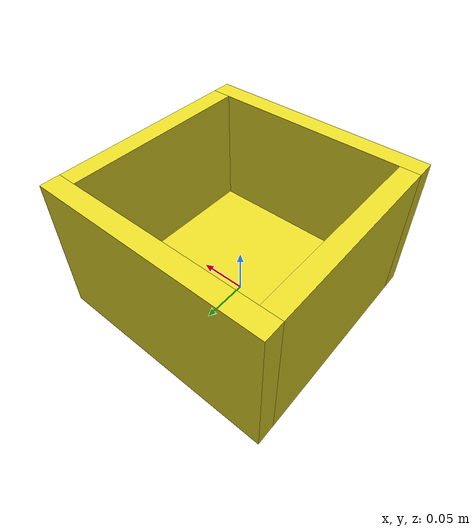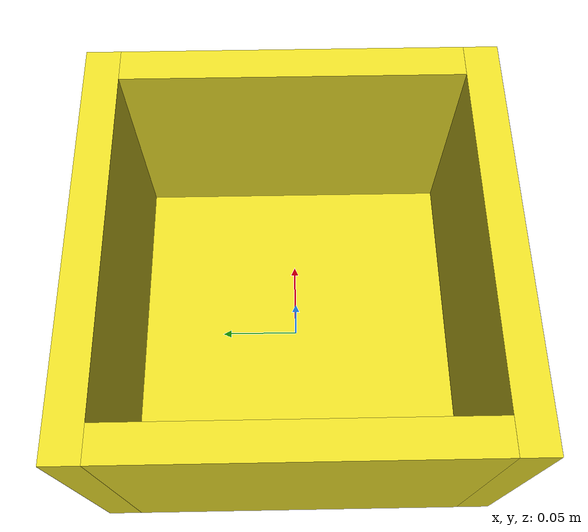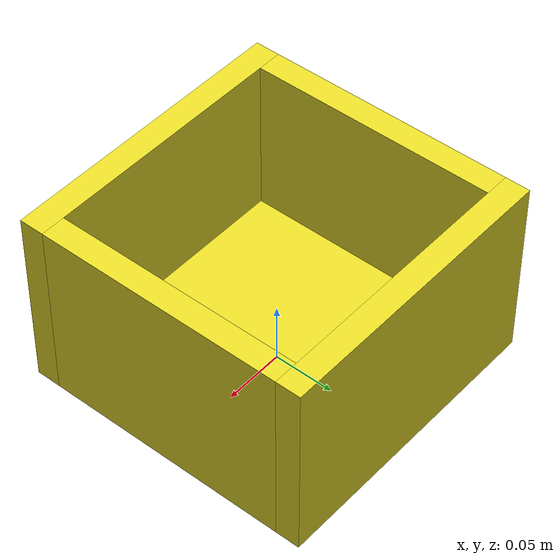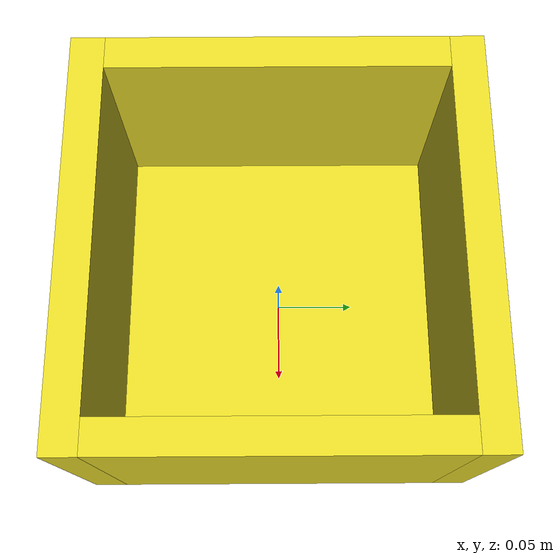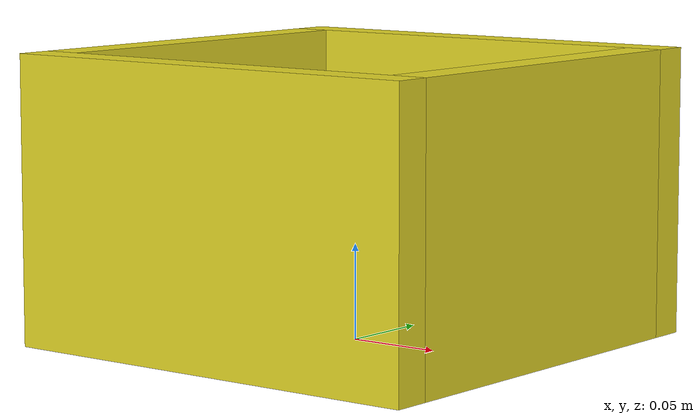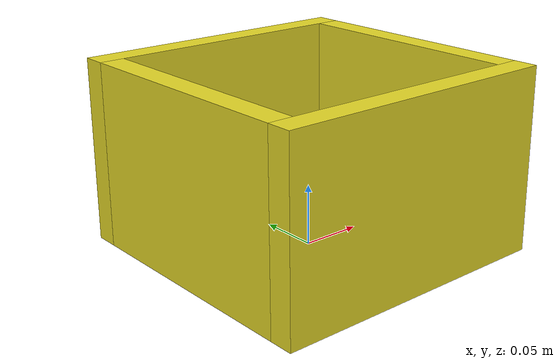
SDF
<?xml version='1.0'?>
<sdf version='1.6'>
  <model name='bin'>
    <link name="bottom">
      <pose>0 0 0.01 0 0 0</pose>
      <inertial>
        <mass>0.05</mass>
        <inertia>
          <ixx>0.001</ixx>
          <iyy>0.001</iyy>
          <izz>0.001</izz>
        </inertia>
      </inertial>
      <visual name='visual_bottom'>
        <geometry>
          <box>
            <size>0.2 0.2 0.02</size>
          </box>
        </geometry>
        <material>
          <script>
            <uri>file://media/materials/scripts/gazebo.material</uri>
            <name>Gazebo/Yellow</name>
          </script>
        </material>
      </visual>
      <collision name='collision_bottom'>
        <geometry>
          <box>
            <size>0.2 0.2 0.02</size>
          </box>
        </geometry>
        <surface>
          <friction>
            <ode>
              <mu>10</mu>
              <mu2>10</mu2>
            </ode>
          </friction>
        </surface>
      </collision>
    </link>

    <link name="left">
      <pose>-0.11 0 0.075 0 0 0</pose>
      <inertial>
        <mass>0.05</mass>
        <inertia>
          <ixx>0.001</ixx>
          <iyy>0.001</iyy>
          <izz>0.001</izz>
        </inertia>
      </inertial>
      <visual name='visual_left'>
        <geometry>
          <box>
            <size>0.02 0.2 0.15</size>
          </box>
        </geometry>
        <material>
          <script>
            <uri>file://media/materials/scripts/gazebo.material</uri>
            <name>Gazebo/Yellow</name>
          </script>
        </material>
      </visual>
      <collision name='collision_left'>
        <geometry>
          <box>
            <size>0.02 0.2 0.15</size>
          </box>
        </geometry>
        <surface>
          <friction>
            <ode>
              <mu>10</mu>
              <mu2>10</mu2>
            </ode>
          </friction>
        </surface>
      </collision>
    </link>

    <link name="right">
      <pose>0.11 0 0.075 0 0 0</pose>
      <inertial>
        <mass>0.05</mass>
        <inertia>
          <ixx>0.001</ixx>
          <iyy>0.001</iyy>
          <izz>0.001</izz>
        </inertia>
      </inertial>
      <visual name='visual_right'>
        <geometry>
          <box>
            <size>0.02 0.2 0.15</size>
          </box>
        </geometry>
        <material>
          <script>
            <uri>file://media/materials/scripts/gazebo.material</uri>
            <name>Gazebo/Yellow</name>
          </script>
        </material>
      </visual>
      <collision name='collision_right'>
        <geometry>
          <box>
            <size>0.02 0.2 0.15</size>
          </box>
        </geometry>
        <surface>
          <friction>
            <ode>
              <mu>10</mu>
              <mu2>10</mu2>
            </ode>
          </friction>
        </surface>
      </collision>
    </link>

    <link name="back">
      <pose>0 0.11 0.075 0 0 0</pose>
      <inertial>
        <mass>0.05</mass>
        <inertia>
          <ixx>0.001</ixx>
          <iyy>0.001</iyy>
          <izz>0.001</izz>
        </inertia>
      </inertial>
      <visual name='visual_back'>
        <geometry>
          <box>
            <size>0.24 0.02 0.15</size>
          </box>
        </geometry>
        <material>
          <script>
            <uri>file://media/materials/scripts/gazebo.material</uri>
            <name>Gazebo/Yellow</name>
          </script>
        </material>
      </visual>
      <collision name='collision_back'>
        <geometry>
          <box>
            <size>0.24 0.02 0.15</size>
          </box>
        </geometry>
        <surface>
          <friction>
            <ode>
              <mu>10</mu>
              <mu2>10</mu2>
            </ode>
          </friction>
        </surface>
      </collision>
    </link>

    <link name="front">
      <pose>0 -0.11 0.075 0 0 0</pose>
      <inertial>
        <mass>0.05</mass>
        <inertia>
          <ixx>0.001</ixx>
          <iyy>0.001</iyy>
          <izz>0.001</izz>
        </inertia>
      </inertial>
      <visual name='visual_front'>
        <geometry>
          <box>
            <size>0.24 0.02 0.15</size>
          </box>
        </geometry>
        <material>
          <script>
            <uri>file://media/materials/scripts/gazebo.material</uri>
            <name>Gazebo/Yellow</name>
          </script>
        </material>
      </visual>
      <collision name='collision_front'>
        <geometry>
          <box>
            <size>0.24 0.02 0.15</size>
          </box>
        </geometry>
        <surface>
          <friction>
            <ode>
              <mu>10</mu>
              <mu2>10</mu2>
            </ode>
          </friction>
        </surface>
      </collision>
    </link>

    <joint name="left_joint" type="fixed">
      <parent>bottom</parent>
      <child>left</child>
    </joint>

    <joint name="right_joint" type="fixed">
      <parent>bottom</parent>
      <child>right</child>
    </joint>

    <joint name="back_joint" type="fixed">
      <parent>bottom</parent>
      <child>back</child>
    </joint>

    <joint name="front_joint" type="fixed">
      <parent>bottom</parent>
      <child>front</child>
    </joint>
    <static>1</static>

  </model>
</sdf>
